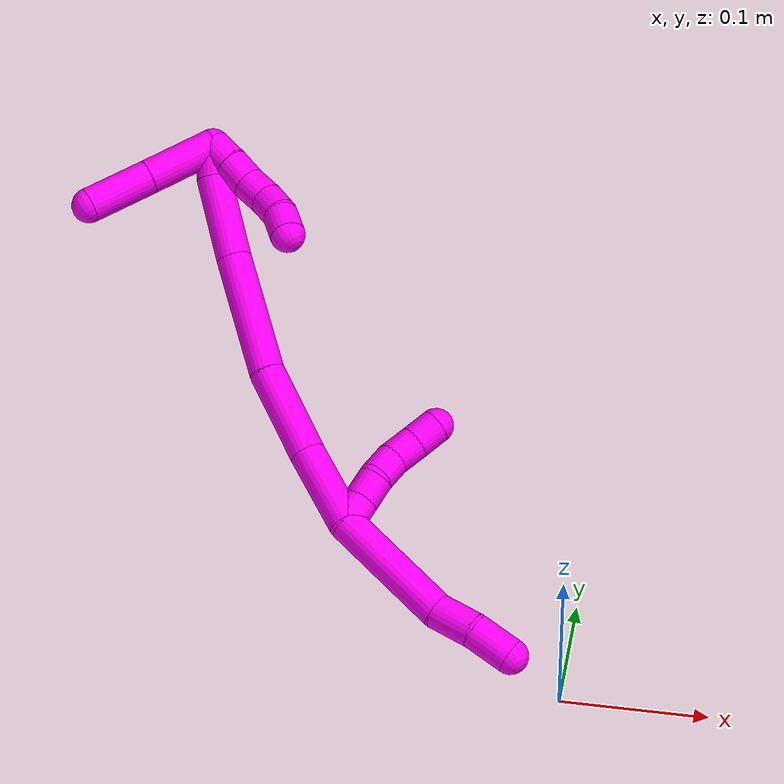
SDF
<sdf version="1.7">
 <world name="default">
  <model name="10">
   <static>0</static>
   <link name="10">
    <collision name="collision-cylinder-e_1_2_8">
     <pose>0.008747 0.008721 -0.042927 -2.94117 0.197093 -1.55394</pose>
     <geometry><cylinder><radius>0.0125</radius><length>0.089337</length></cylinder></geometry>
     <surface>
      <friction><ode><mu>1.16</mu><mu2>1.16</mu2><slip1>0</slip1><slip2>0</slip2></ode></friction>
      <contact><ode><kp>1e+06</kp><kd>1</kd><max_vel>0</max_vel><min_depth>0.001</min_depth></ode></contact>
     </surface>
    </collision>
    <visual name="visual-cylinder-e_1_2_8">
     <pose>0.008747 0.008721 -0.042927 -2.94117 0.197093 -1.55394</pose>
     <geometry><cylinder><radius>0.0125</radius><length>0.089337</length></cylinder></geometry>
     <material><ambient>1 0 0.964706 1</ambient></material>
    </visual>
    <collision name="collision-cylinder-e_2_8_9">
     <pose>0.02428 0.022089 -0.098706 -2.79456 0.46091 -1.85835</pose>
     <geometry><cylinder><radius>0.0125</radius><length>0.030517</length></cylinder></geometry>
     <surface>
      <friction><ode><mu>1.16</mu><mu2>1.16</mu2><slip1>0</slip1><slip2>0</slip2></ode></friction>
      <contact><ode><kp>1e+06</kp><kd>1</kd><max_vel>0</max_vel><min_depth>0.001</min_depth></ode></contact>
     </surface>
    </collision>
    <visual name="visual-cylinder-e_2_8_9">
     <pose>0.02428 0.022089 -0.098706 -2.79456 0.46091 -1.85835</pose>
     <geometry><cylinder><radius>0.0125</radius><length>0.030517</length></cylinder></geometry>
     <material><ambient>1 0 0.964706 1</ambient></material>
    </visual>
    <collision name="collision-cylinder-e_3_9_6">
     <pose>0.034765 0.031705 -0.125299 -2.7947 0.247902 -1.23628</pose>
     <geometry><cylinder><radius>0.0125</radius><length>0.030145</length></cylinder></geometry>
     <surface>
      <friction><ode><mu>1.16</mu><mu2>1.16</mu2><slip1>0</slip1><slip2>0</slip2></ode></friction>
      <contact><ode><kp>1e+06</kp><kd>1</kd><max_vel>0</max_vel><min_depth>0.001</min_depth></ode></contact>
     </surface>
    </collision>
    <visual name="visual-cylinder-e_3_9_6">
     <pose>0.034765 0.031705 -0.125299 -2.7947 0.247902 -1.23628</pose>
     <geometry><cylinder><radius>0.0125</radius><length>0.030145</length></cylinder></geometry>
     <material><ambient>1 0 0.964706 1</ambient></material>
    </visual>
    <collision name="collision-cylinder-e_1_2_10">
     <pose>0.001319 0.008607 0.004917 -1.05175 0.132278 -0.076847</pose>
     <geometry><cylinder><radius>0.0125</radius><length>0.02</length></cylinder></geometry>
     <surface>
      <friction><ode><mu>1.16</mu><mu2>1.16</mu2><slip1>0</slip1><slip2>0</slip2></ode></friction>
      <contact><ode><kp>1e+06</kp><kd>1</kd><max_vel>0</max_vel><min_depth>0.001</min_depth></ode></contact>
     </surface>
    </collision>
    <visual name="visual-cylinder-e_1_2_10">
     <pose>0.001319 0.008607 0.004917 -1.05175 0.132278 -0.076847</pose>
     <geometry><cylinder><radius>0.0125</radius><length>0.02</length></cylinder></geometry>
     <material><ambient>1 0 0.964706 1</ambient></material>
    </visual>
    <collision name="collision-cylinder-e_2_10_11">
     <pose>0.005898 0.025386 0.014587 -1.04408 0.332079 -0.192217</pose>
     <geometry><cylinder><radius>0.0125</radius><length>0.02</length></cylinder></geometry>
     <surface>
      <friction><ode><mu>1.16</mu><mu2>1.16</mu2><slip1>0</slip1><slip2>0</slip2></ode></friction>
      <contact><ode><kp>1e+06</kp><kd>1</kd><max_vel>0</max_vel><min_depth>0.001</min_depth></ode></contact>
     </surface>
    </collision>
    <visual name="visual-cylinder-e_2_10_11">
     <pose>0.005898 0.025386 0.014587 -1.04408 0.332079 -0.192217</pose>
     <geometry><cylinder><radius>0.0125</radius><length>0.02</length></cylinder></geometry>
     <material><ambient>1 0 0.964706 1</ambient></material>
    </visual>
    <collision name="collision-cylinder-e_3_11_12">
     <pose>0.009607 0.042841 0.023033 -1.19202 0.044932 -0.03048</pose>
     <geometry><cylinder><radius>0.0125</radius><length>0.02</length></cylinder></geometry>
     <surface>
      <friction><ode><mu>1.16</mu><mu2>1.16</mu2><slip1>0</slip1><slip2>0</slip2></ode></friction>
      <contact><ode><kp>1e+06</kp><kd>1</kd><max_vel>0</max_vel><min_depth>0.001</min_depth></ode></contact>
     </surface>
    </collision>
    <visual name="visual-cylinder-e_3_11_12">
     <pose>0.009607 0.042841 0.023033 -1.19202 0.044932 -0.03048</pose>
     <geometry><cylinder><radius>0.0125</radius><length>0.02</length></cylinder></geometry>
     <material><ambient>1 0 0.964706 1</ambient></material>
    </visual>
    <collision name="collision-cylinder-e_4_12_13">
     <pose>0.012646 0.061604 0.028568 -1.37904 0.261945 -0.216377</pose>
     <geometry><cylinder><radius>0.0125</radius><length>0.02</length></cylinder></geometry>
     <surface>
      <friction><ode><mu>1.16</mu><mu2>1.16</mu2><slip1>0</slip1><slip2>0</slip2></ode></friction>
      <contact><ode><kp>1e+06</kp><kd>1</kd><max_vel>0</max_vel><min_depth>0.001</min_depth></ode></contact>
     </surface>
    </collision>
    <visual name="visual-cylinder-e_4_12_13">
     <pose>0.012646 0.061604 0.028568 -1.37904 0.261945 -0.216377</pose>
     <geometry><cylinder><radius>0.0125</radius><length>0.02</length></cylinder></geometry>
     <material><ambient>1 0 0.964706 1</ambient></material>
    </visual>
    <collision name="collision-cylinder-e_5_13_5">
     <pose>0.01851 0.080359 0.032224 -1.37748 0.333629 -0.275471</pose>
     <geometry><cylinder><radius>0.0125</radius><length>0.02</length></cylinder></geometry>
     <surface>
      <friction><ode><mu>1.16</mu><mu2>1.16</mu2><slip1>0</slip1><slip2>0</slip2></ode></friction>
      <contact><ode><kp>1e+06</kp><kd>1</kd><max_vel>0</max_vel><min_depth>0.001</min_depth></ode></contact>
     </surface>
    </collision>
    <visual name="visual-cylinder-e_5_13_5">
     <pose>0.01851 0.080359 0.032224 -1.37748 0.333629 -0.275471</pose>
     <geometry><cylinder><radius>0.0125</radius><length>0.02</length></cylinder></geometry>
     <material><ambient>1 0 0.964706 1</ambient></material>
    </visual>
    <collision name="collision-cylinder-e_1_2_14">
     <pose>-0.003658 0.002652 0.029237 -0.09045 -0.123964 0.005617</pose>
     <geometry><cylinder><radius>0.0125</radius><length>0.059168</length></cylinder></geometry>
     <surface>
      <friction><ode><mu>1.16</mu><mu2>1.16</mu2><slip1>0</slip1><slip2>0</slip2></ode></friction>
      <contact><ode><kp>1e+06</kp><kd>1</kd><max_vel>0</max_vel><min_depth>0.001</min_depth></ode></contact>
     </surface>
    </collision>
    <visual name="visual-cylinder-e_1_2_14">
     <pose>-0.003658 0.002652 0.029237 -0.09045 -0.123964 0.005617</pose>
     <geometry><cylinder><radius>0.0125</radius><length>0.059168</length></cylinder></geometry>
     <material><ambient>1 0 0.964706 1</ambient></material>
    </visual>
    <collision name="collision-cylinder-e_2_14_15">
     <pose>-0.008213 0.008077 0.091715 -0.083258 -0.026895 0.00112</pose>
     <geometry><cylinder><radius>0.0125</radius><length>0.066738</length></cylinder></geometry>
     <surface>
      <friction><ode><mu>1.16</mu><mu2>1.16</mu2><slip1>0</slip1><slip2>0</slip2></ode></friction>
      <contact><ode><kp>1e+06</kp><kd>1</kd><max_vel>0</max_vel><min_depth>0.001</min_depth></ode></contact>
     </surface>
    </collision>
    <visual name="visual-cylinder-e_2_14_15">
     <pose>-0.008213 0.008077 0.091715 -0.083258 -0.026895 0.00112</pose>
     <geometry><cylinder><radius>0.0125</radius><length>0.066738</length></cylinder></geometry>
     <material><ambient>1 0 0.964706 1</ambient></material>
    </visual>
    <collision name="collision-cylinder-e_3_15_16">
     <pose>-0.006308 0.020793 0.167706 -0.2285 0.063764 -0.007319</pose>
     <geometry><cylinder><radius>0.0125</radius><length>0.08796</length></cylinder></geometry>
     <surface>
      <friction><ode><mu>1.16</mu><mu2>1.16</mu2><slip1>0</slip1><slip2>0</slip2></ode></friction>
      <contact><ode><kp>1e+06</kp><kd>1</kd><max_vel>0</max_vel><min_depth>0.001</min_depth></ode></contact>
     </surface>
    </collision>
    <visual name="visual-cylinder-e_3_15_16">
     <pose>-0.006308 0.020793 0.167706 -0.2285 0.063764 -0.007319</pose>
     <geometry><cylinder><radius>0.0125</radius><length>0.08796</length></cylinder></geometry>
     <material><ambient>1 0 0.964706 1</ambient></material>
    </visual>
    <collision name="collision-cylinder-e_4_16_17">
     <pose>-0.000648 0.038558 0.240489 -0.254816 0.091839 -0.011773</pose>
     <geometry><cylinder><radius>0.0125</radius><length>0.062331</length></cylinder></geometry>
     <surface>
      <friction><ode><mu>1.16</mu><mu2>1.16</mu2><slip1>0</slip1><slip2>0</slip2></ode></friction>
      <contact><ode><kp>1e+06</kp><kd>1</kd><max_vel>0</max_vel><min_depth>0.001</min_depth></ode></contact>
     </surface>
    </collision>
    <visual name="visual-cylinder-e_4_16_17">
     <pose>-0.000648 0.038558 0.240489 -0.254816 0.091839 -0.011773</pose>
     <geometry><cylinder><radius>0.0125</radius><length>0.062331</length></cylinder></geometry>
     <material><ambient>1 0 0.964706 1</ambient></material>
    </visual>
    <collision name="collision-cylinder-e_5_17_1">
     <pose>0.006392 0.050293 0.280954 -0.358759 0.359025 -0.065786</pose>
     <geometry><cylinder><radius>0.0125</radius><length>0.023803</length></cylinder></geometry>
     <surface>
      <friction><ode><mu>1.16</mu><mu2>1.16</mu2><slip1>0</slip1><slip2>0</slip2></ode></friction>
      <contact><ode><kp>1e+06</kp><kd>1</kd><max_vel>0</max_vel><min_depth>0.001</min_depth></ode></contact>
     </surface>
    </collision>
    <visual name="visual-cylinder-e_5_17_1">
     <pose>0.006392 0.050293 0.280954 -0.358759 0.359025 -0.065786</pose>
     <geometry><cylinder><radius>0.0125</radius><length>0.023803</length></cylinder></geometry>
     <material><ambient>1 0 0.964706 1</ambient></material>
    </visual>
    <collision name="collision-cylinder-e_1_1_18">
     <pose>0.002415 0.029319 0.291284 1.57495 -0.316797 -0.318094</pose>
     <geometry><cylinder><radius>0.0125</radius><length>0.05238</length></cylinder></geometry>
     <surface>
      <friction><ode><mu>1.16</mu><mu2>1.16</mu2><slip1>0</slip1><slip2>0</slip2></ode></friction>
      <contact><ode><kp>1e+06</kp><kd>1</kd><max_vel>0</max_vel><min_depth>0.001</min_depth></ode></contact>
     </surface>
    </collision>
    <visual name="visual-cylinder-e_1_1_18">
     <pose>0.002415 0.029319 0.291284 1.57495 -0.316797 -0.318094</pose>
     <geometry><cylinder><radius>0.0125</radius><length>0.05238</length></cylinder></geometry>
     <material><ambient>1 0 0.964706 1</ambient></material>
    </visual>
    <collision name="collision-cylinder-e_2_18_4">
     <pose>-0.012475 -0.018406 0.291007 1.57836 -0.286609 -0.288754</pose>
     <geometry><cylinder><radius>0.0125</radius><length>0.04762</length></cylinder></geometry>
     <surface>
      <friction><ode><mu>1.16</mu><mu2>1.16</mu2><slip1>0</slip1><slip2>0</slip2></ode></friction>
      <contact><ode><kp>1e+06</kp><kd>1</kd><max_vel>0</max_vel><min_depth>0.001</min_depth></ode></contact>
     </surface>
    </collision>
    <visual name="visual-cylinder-e_2_18_4">
     <pose>-0.012475 -0.018406 0.291007 1.57836 -0.286609 -0.288754</pose>
     <geometry><cylinder><radius>0.0125</radius><length>0.04762</length></cylinder></geometry>
     <material><ambient>1 0 0.964706 1</ambient></material>
    </visual>
    <collision name="collision-cylinder-e_1_1_19">
     <pose>0.012979 0.055495 0.281766 -3.00838 0.242845 -2.14104</pose>
     <geometry><cylinder><radius>0.0125</radius><length>0.02</length></cylinder></geometry>
     <surface>
      <friction><ode><mu>1.16</mu><mu2>1.16</mu2><slip1>0</slip1><slip2>0</slip2></ode></friction>
      <contact><ode><kp>1e+06</kp><kd>1</kd><max_vel>0</max_vel><min_depth>0.001</min_depth></ode></contact>
     </surface>
    </collision>
    <visual name="visual-cylinder-e_1_1_19">
     <pose>0.012979 0.055495 0.281766 -3.00838 0.242845 -2.14104</pose>
     <geometry><cylinder><radius>0.0125</radius><length>0.02</length></cylinder></geometry>
     <material><ambient>1 0 0.964706 1</ambient></material>
    </visual>
    <collision name="collision-cylinder-e_2_19_20">
     <pose>0.017045 0.057946 0.262354 -3.02344 0.166966 -1.91097</pose>
     <geometry><cylinder><radius>0.0125</radius><length>0.02</length></cylinder></geometry>
     <surface>
      <friction><ode><mu>1.16</mu><mu2>1.16</mu2><slip1>0</slip1><slip2>0</slip2></ode></friction>
      <contact><ode><kp>1e+06</kp><kd>1</kd><max_vel>0</max_vel><min_depth>0.001</min_depth></ode></contact>
     </surface>
    </collision>
    <visual name="visual-cylinder-e_2_19_20">
     <pose>0.017045 0.057946 0.262354 -3.02344 0.166966 -1.91097</pose>
     <geometry><cylinder><radius>0.0125</radius><length>0.02</length></cylinder></geometry>
     <material><ambient>1 0 0.964706 1</ambient></material>
    </visual>
    <collision name="collision-cylinder-e_3_20_21">
     <pose>0.021992 0.0602 0.24318 -3.02576 0.334669 -2.48029</pose>
     <geometry><cylinder><radius>0.0125</radius><length>0.02</length></cylinder></geometry>
     <surface>
      <friction><ode><mu>1.16</mu><mu2>1.16</mu2><slip1>0</slip1><slip2>0</slip2></ode></friction>
      <contact><ode><kp>1e+06</kp><kd>1</kd><max_vel>0</max_vel><min_depth>0.001</min_depth></ode></contact>
     </surface>
    </collision>
    <visual name="visual-cylinder-e_3_20_21">
     <pose>0.021992 0.0602 0.24318 -3.02576 0.334669 -2.48029</pose>
     <geometry><cylinder><radius>0.0125</radius><length>0.02</length></cylinder></geometry>
     <material><ambient>1 0 0.964706 1</ambient></material>
    </visual>
    <collision name="collision-cylinder-e_4_21_22">
     <pose>0.029963 0.059969 0.225064 2.99131 0.487821 2.5541</pose>
     <geometry><cylinder><radius>0.0125</radius><length>0.02</length></cylinder></geometry>
     <surface>
      <friction><ode><mu>1.16</mu><mu2>1.16</mu2><slip1>0</slip1><slip2>0</slip2></ode></friction>
      <contact><ode><kp>1e+06</kp><kd>1</kd><max_vel>0</max_vel><min_depth>0.001</min_depth></ode></contact>
     </surface>
    </collision>
    <visual name="visual-cylinder-e_4_21_22">
     <pose>0.029963 0.059969 0.225064 2.99131 0.487821 2.5541</pose>
     <geometry><cylinder><radius>0.0125</radius><length>0.02</length></cylinder></geometry>
     <material><ambient>1 0 0.964706 1</ambient></material>
    </visual>
    <collision name="collision-cylinder-e_5_22_3">
     <pose>0.037207 0.0554 0.207224 2.79905 0.258528 1.28895</pose>
     <geometry><cylinder><radius>0.0125</radius><length>0.02</length></cylinder></geometry>
     <surface>
      <friction><ode><mu>1.16</mu><mu2>1.16</mu2><slip1>0</slip1><slip2>0</slip2></ode></friction>
      <contact><ode><kp>1e+06</kp><kd>1</kd><max_vel>0</max_vel><min_depth>0.001</min_depth></ode></contact>
     </surface>
    </collision>
    <visual name="visual-cylinder-e_5_22_3">
     <pose>0.037207 0.0554 0.207224 2.79905 0.258528 1.28895</pose>
     <geometry><cylinder><radius>0.0125</radius><length>0.02</length></cylinder></geometry>
     <material><ambient>1 0 0.964706 1</ambient></material>
    </visual>
    <collision name="collision-sphere-3">
     <pose>0.039763 0.052152 0.198118 0 -0 0</pose>
     <geometry><sphere><radius>0.0125</radius></sphere></geometry>
     <surface>
      <friction><ode><mu>1.16</mu><mu2>1.16</mu2><slip1>0</slip1><slip2>0</slip2></ode></friction>
      <contact><ode><kp>1e+06</kp><kd>1</kd><max_vel>0</max_vel><min_depth>0.001</min_depth></ode></contact>
     </surface>
    </collision>
    <visual name="visual-sphere-3">
     <pose>0.039763 0.052152 0.198118 0 -0 0</pose>
     <geometry><sphere><radius>0.0125</radius></sphere></geometry>
     <material><ambient>1 0 0.964706 1</ambient></material>
    </visual>
    <collision name="collision-sphere-22">
     <pose>0.03465 0.058647 0.21633 0 -0 0</pose>
     <geometry><sphere><radius>0.0125</radius></sphere></geometry>
     <surface>
      <friction><ode><mu>1.16</mu><mu2>1.16</mu2><slip1>0</slip1><slip2>0</slip2></ode></friction>
      <contact><ode><kp>1e+06</kp><kd>1</kd><max_vel>0</max_vel><min_depth>0.001</min_depth></ode></contact>
     </surface>
    </collision>
    <visual name="visual-sphere-22">
     <pose>0.03465 0.058647 0.21633 0 -0 0</pose>
     <geometry><sphere><radius>0.0125</radius></sphere></geometry>
     <material><ambient>1 0 0.964706 1</ambient></material>
    </visual>
    <collision name="collision-sphere-21">
     <pose>0.025276 0.061292 0.233798 0 -0 0</pose>
     <geometry><sphere><radius>0.0125</radius></sphere></geometry>
     <surface>
      <friction><ode><mu>1.16</mu><mu2>1.16</mu2><slip1>0</slip1><slip2>0</slip2></ode></friction>
      <contact><ode><kp>1e+06</kp><kd>1</kd><max_vel>0</max_vel><min_depth>0.001</min_depth></ode></contact>
     </surface>
    </collision>
    <visual name="visual-sphere-21">
     <pose>0.025276 0.061292 0.233798 0 -0 0</pose>
     <geometry><sphere><radius>0.0125</radius></sphere></geometry>
     <material><ambient>1 0 0.964706 1</ambient></material>
    </visual>
    <collision name="collision-sphere-20">
     <pose>0.018707 0.059109 0.252561 0 -0 0</pose>
     <geometry><sphere><radius>0.0125</radius></sphere></geometry>
     <surface>
      <friction><ode><mu>1.16</mu><mu2>1.16</mu2><slip1>0</slip1><slip2>0</slip2></ode></friction>
      <contact><ode><kp>1e+06</kp><kd>1</kd><max_vel>0</max_vel><min_depth>0.001</min_depth></ode></contact>
     </surface>
    </collision>
    <visual name="visual-sphere-20">
     <pose>0.018707 0.059109 0.252561 0 -0 0</pose>
     <geometry><sphere><radius>0.0125</radius></sphere></geometry>
     <material><ambient>1 0 0.964706 1</ambient></material>
    </visual>
    <collision name="collision-sphere-19">
     <pose>0.015383 0.056784 0.272146 0 -0 0</pose>
     <geometry><sphere><radius>0.0125</radius></sphere></geometry>
     <surface>
      <friction><ode><mu>1.16</mu><mu2>1.16</mu2><slip1>0</slip1><slip2>0</slip2></ode></friction>
      <contact><ode><kp>1e+06</kp><kd>1</kd><max_vel>0</max_vel><min_depth>0.001</min_depth></ode></contact>
     </surface>
    </collision>
    <visual name="visual-sphere-19">
     <pose>0.015383 0.056784 0.272146 0 -0 0</pose>
     <geometry><sphere><radius>0.0125</radius></sphere></geometry>
     <material><ambient>1 0 0.964706 1</ambient></material>
    </visual>
    <collision name="collision-sphere-11">
     <pose>0.009158 0.033559 0.019339 0 -0 0</pose>
     <geometry><sphere><radius>0.0125</radius></sphere></geometry>
     <surface>
      <friction><ode><mu>1.16</mu><mu2>1.16</mu2><slip1>0</slip1><slip2>0</slip2></ode></friction>
      <contact><ode><kp>1e+06</kp><kd>1</kd><max_vel>0</max_vel><min_depth>0.001</min_depth></ode></contact>
     </surface>
    </collision>
    <visual name="visual-sphere-11">
     <pose>0.009158 0.033559 0.019339 0 -0 0</pose>
     <geometry><sphere><radius>0.0125</radius></sphere></geometry>
     <material><ambient>1 0 0.964706 1</ambient></material>
    </visual>
    <collision name="collision-sphere-10">
     <pose>0.002638 0.017214 0.009834 0 -0 0</pose>
     <geometry><sphere><radius>0.0125</radius></sphere></geometry>
     <surface>
      <friction><ode><mu>1.16</mu><mu2>1.16</mu2><slip1>0</slip1><slip2>0</slip2></ode></friction>
      <contact><ode><kp>1e+06</kp><kd>1</kd><max_vel>0</max_vel><min_depth>0.001</min_depth></ode></contact>
     </surface>
    </collision>
    <visual name="visual-sphere-10">
     <pose>0.002638 0.017214 0.009834 0 -0 0</pose>
     <geometry><sphere><radius>0.0125</radius></sphere></geometry>
     <material><ambient>1 0 0.964706 1</ambient></material>
    </visual>
    <collision name="collision-sphere-6">
     <pose>0.038464 0.036673 -0.139041 0 -0 0</pose>
     <geometry><sphere><radius>0.0125</radius></sphere></geometry>
     <surface>
      <friction><ode><mu>1.16</mu><mu2>1.16</mu2><slip1>0</slip1><slip2>0</slip2></ode></friction>
      <contact><ode><kp>1e+06</kp><kd>1</kd><max_vel>0</max_vel><min_depth>0.001</min_depth></ode></contact>
     </surface>
    </collision>
    <visual name="visual-sphere-6">
     <pose>0.038464 0.036673 -0.139041 0 -0 0</pose>
     <geometry><sphere><radius>0.0125</radius></sphere></geometry>
     <material><ambient>1 0 0.964706 1</ambient></material>
    </visual>
    <collision name="collision-sphere-9">
     <pose>0.031067 0.026737 -0.111557 0 -0 0</pose>
     <geometry><sphere><radius>0.0125</radius></sphere></geometry>
     <surface>
      <friction><ode><mu>1.16</mu><mu2>1.16</mu2><slip1>0</slip1><slip2>0</slip2></ode></friction>
      <contact><ode><kp>1e+06</kp><kd>1</kd><max_vel>0</max_vel><min_depth>0.001</min_depth></ode></contact>
     </surface>
    </collision>
    <visual name="visual-sphere-9">
     <pose>0.031067 0.026737 -0.111557 0 -0 0</pose>
     <geometry><sphere><radius>0.0125</radius></sphere></geometry>
     <material><ambient>1 0 0.964706 1</ambient></material>
    </visual>
    <collision name="collision-sphere-2">
     <geometry><sphere><radius>0.0125</radius></sphere></geometry>
     <surface>
      <friction><ode><mu>1.16</mu><mu2>1.16</mu2><slip1>0</slip1><slip2>0</slip2></ode></friction>
      <contact><ode><kp>1e+06</kp><kd>1</kd><max_vel>0</max_vel><min_depth>0.001</min_depth></ode></contact>
     </surface>
    </collision>
    <visual name="visual-sphere-2">
     <geometry><sphere><radius>0.0125</radius></sphere></geometry>
     <material><ambient>1 0 0.964706 1</ambient></material>
    </visual>
    <collision name="collision-sphere-8">
     <pose>0.017494 0.017441 -0.085854 0 -0 0</pose>
     <geometry><sphere><radius>0.0125</radius></sphere></geometry>
     <surface>
      <friction><ode><mu>1.16</mu><mu2>1.16</mu2><slip1>0</slip1><slip2>0</slip2></ode></friction>
      <contact><ode><kp>1e+06</kp><kd>1</kd><max_vel>0</max_vel><min_depth>0.001</min_depth></ode></contact>
     </surface>
    </collision>
    <visual name="visual-sphere-8">
     <pose>0.017494 0.017441 -0.085854 0 -0 0</pose>
     <geometry><sphere><radius>0.0125</radius></sphere></geometry>
     <material><ambient>1 0 0.964706 1</ambient></material>
    </visual>
    <collision name="collision-sphere-12">
     <pose>0.010056 0.052122 0.026727 0 -0 0</pose>
     <geometry><sphere><radius>0.0125</radius></sphere></geometry>
     <surface>
      <friction><ode><mu>1.16</mu><mu2>1.16</mu2><slip1>0</slip1><slip2>0</slip2></ode></friction>
      <contact><ode><kp>1e+06</kp><kd>1</kd><max_vel>0</max_vel><min_depth>0.001</min_depth></ode></contact>
     </surface>
    </collision>
    <visual name="visual-sphere-12">
     <pose>0.010056 0.052122 0.026727 0 -0 0</pose>
     <geometry><sphere><radius>0.0125</radius></sphere></geometry>
     <material><ambient>1 0 0.964706 1</ambient></material>
    </visual>
    <collision name="collision-sphere-13">
     <pose>0.015236 0.071086 0.030409 0 -0 0</pose>
     <geometry><sphere><radius>0.0125</radius></sphere></geometry>
     <surface>
      <friction><ode><mu>1.16</mu><mu2>1.16</mu2><slip1>0</slip1><slip2>0</slip2></ode></friction>
      <contact><ode><kp>1e+06</kp><kd>1</kd><max_vel>0</max_vel><min_depth>0.001</min_depth></ode></contact>
     </surface>
    </collision>
    <visual name="visual-sphere-13">
     <pose>0.015236 0.071086 0.030409 0 -0 0</pose>
     <geometry><sphere><radius>0.0125</radius></sphere></geometry>
     <material><ambient>1 0 0.964706 1</ambient></material>
    </visual>
    <collision name="collision-sphere-5">
     <pose>0.021785 0.089631 0.034039 0 -0 0</pose>
     <geometry><sphere><radius>0.0125</radius></sphere></geometry>
     <surface>
      <friction><ode><mu>1.16</mu><mu2>1.16</mu2><slip1>0</slip1><slip2>0</slip2></ode></friction>
      <contact><ode><kp>1e+06</kp><kd>1</kd><max_vel>0</max_vel><min_depth>0.001</min_depth></ode></contact>
     </surface>
    </collision>
    <visual name="visual-sphere-5">
     <pose>0.021785 0.089631 0.034039 0 -0 0</pose>
     <geometry><sphere><radius>0.0125</radius></sphere></geometry>
     <material><ambient>1 0 0.964706 1</ambient></material>
    </visual>
    <collision name="collision-sphere-14">
     <pose>-0.007316 0.005303 0.058474 0 -0 0</pose>
     <geometry><sphere><radius>0.0125</radius></sphere></geometry>
     <surface>
      <friction><ode><mu>1.16</mu><mu2>1.16</mu2><slip1>0</slip1><slip2>0</slip2></ode></friction>
      <contact><ode><kp>1e+06</kp><kd>1</kd><max_vel>0</max_vel><min_depth>0.001</min_depth></ode></contact>
     </surface>
    </collision>
    <visual name="visual-sphere-14">
     <pose>-0.007316 0.005303 0.058474 0 -0 0</pose>
     <geometry><sphere><radius>0.0125</radius></sphere></geometry>
     <material><ambient>1 0 0.964706 1</ambient></material>
    </visual>
    <collision name="collision-sphere-15">
     <pose>-0.009111 0.010851 0.124956 0 -0 0</pose>
     <geometry><sphere><radius>0.0125</radius></sphere></geometry>
     <surface>
      <friction><ode><mu>1.16</mu><mu2>1.16</mu2><slip1>0</slip1><slip2>0</slip2></ode></friction>
      <contact><ode><kp>1e+06</kp><kd>1</kd><max_vel>0</max_vel><min_depth>0.001</min_depth></ode></contact>
     </surface>
    </collision>
    <visual name="visual-sphere-15">
     <pose>-0.009111 0.010851 0.124956 0 -0 0</pose>
     <geometry><sphere><radius>0.0125</radius></sphere></geometry>
     <material><ambient>1 0 0.964706 1</ambient></material>
    </visual>
    <collision name="collision-sphere-16">
     <pose>-0.003506 0.030735 0.210456 0 -0 0</pose>
     <geometry><sphere><radius>0.0125</radius></sphere></geometry>
     <surface>
      <friction><ode><mu>1.16</mu><mu2>1.16</mu2><slip1>0</slip1><slip2>0</slip2></ode></friction>
      <contact><ode><kp>1e+06</kp><kd>1</kd><max_vel>0</max_vel><min_depth>0.001</min_depth></ode></contact>
     </surface>
    </collision>
    <visual name="visual-sphere-16">
     <pose>-0.003506 0.030735 0.210456 0 -0 0</pose>
     <geometry><sphere><radius>0.0125</radius></sphere></geometry>
     <material><ambient>1 0 0.964706 1</ambient></material>
    </visual>
    <collision name="collision-sphere-17">
     <pose>0.002211 0.046381 0.270521 0 -0 0</pose>
     <geometry><sphere><radius>0.0125</radius></sphere></geometry>
     <surface>
      <friction><ode><mu>1.16</mu><mu2>1.16</mu2><slip1>0</slip1><slip2>0</slip2></ode></friction>
      <contact><ode><kp>1e+06</kp><kd>1</kd><max_vel>0</max_vel><min_depth>0.001</min_depth></ode></contact>
     </surface>
    </collision>
    <visual name="visual-sphere-17">
     <pose>0.002211 0.046381 0.270521 0 -0 0</pose>
     <geometry><sphere><radius>0.0125</radius></sphere></geometry>
     <material><ambient>1 0 0.964706 1</ambient></material>
    </visual>
    <collision name="collision-sphere-1">
     <pose>0.010574 0.054205 0.291387 0 -0 0</pose>
     <geometry><sphere><radius>0.0125</radius></sphere></geometry>
     <surface>
      <friction><ode><mu>1.16</mu><mu2>1.16</mu2><slip1>0</slip1><slip2>0</slip2></ode></friction>
      <contact><ode><kp>1e+06</kp><kd>1</kd><max_vel>0</max_vel><min_depth>0.001</min_depth></ode></contact>
     </surface>
    </collision>
    <visual name="visual-sphere-1">
     <pose>0.010574 0.054205 0.291387 0 -0 0</pose>
     <geometry><sphere><radius>0.0125</radius></sphere></geometry>
     <material><ambient>1 0 0.964706 1</ambient></material>
    </visual>
    <collision name="collision-sphere-18">
     <pose>-0.005744 0.004433 0.29118 0 -0 0</pose>
     <geometry><sphere><radius>0.0125</radius></sphere></geometry>
     <surface>
      <friction><ode><mu>1.16</mu><mu2>1.16</mu2><slip1>0</slip1><slip2>0</slip2></ode></friction>
      <contact><ode><kp>1e+06</kp><kd>1</kd><max_vel>0</max_vel><min_depth>0.001</min_depth></ode></contact>
     </surface>
    </collision>
    <visual name="visual-sphere-18">
     <pose>-0.005744 0.004433 0.29118 0 -0 0</pose>
     <geometry><sphere><radius>0.0125</radius></sphere></geometry>
     <material><ambient>1 0 0.964706 1</ambient></material>
    </visual>
    <collision name="collision-sphere-4">
     <pose>-0.019206 -0.041244 0.290835 0 -0 0</pose>
     <geometry><sphere><radius>0.0125</radius></sphere></geometry>
     <surface>
      <friction><ode><mu>1.16</mu><mu2>1.16</mu2><slip1>0</slip1><slip2>0</slip2></ode></friction>
      <contact><ode><kp>1e+06</kp><kd>1</kd><max_vel>0</max_vel><min_depth>0.001</min_depth></ode></contact>
     </surface>
    </collision>
    <visual name="visual-sphere-4">
     <pose>-0.019206 -0.041244 0.290835 0 -0 0</pose>
     <geometry><sphere><radius>0.0125</radius></sphere></geometry>
     <material><ambient>1 0 0.964706 1</ambient></material>
    </visual>
    <inertial>
     <pose>0.005651 0.0258 0.118972 0 -0 0</pose>
     <mass>0.75</mass>
     <inertia><ixx>8.6e-05</ixx><ixy>0</ixy><ixz>0</ixz><iyy>6.8e-05</iyy><iyz>0</iyz><izz>-2.8e-05</izz></inertia>
    </inertial>
   </link>
   <pose>-0.160681 0.095962 0.056932 -0.077093 -0.990999 -0.687182</pose>
  </model>
 </world>
</sdf>
